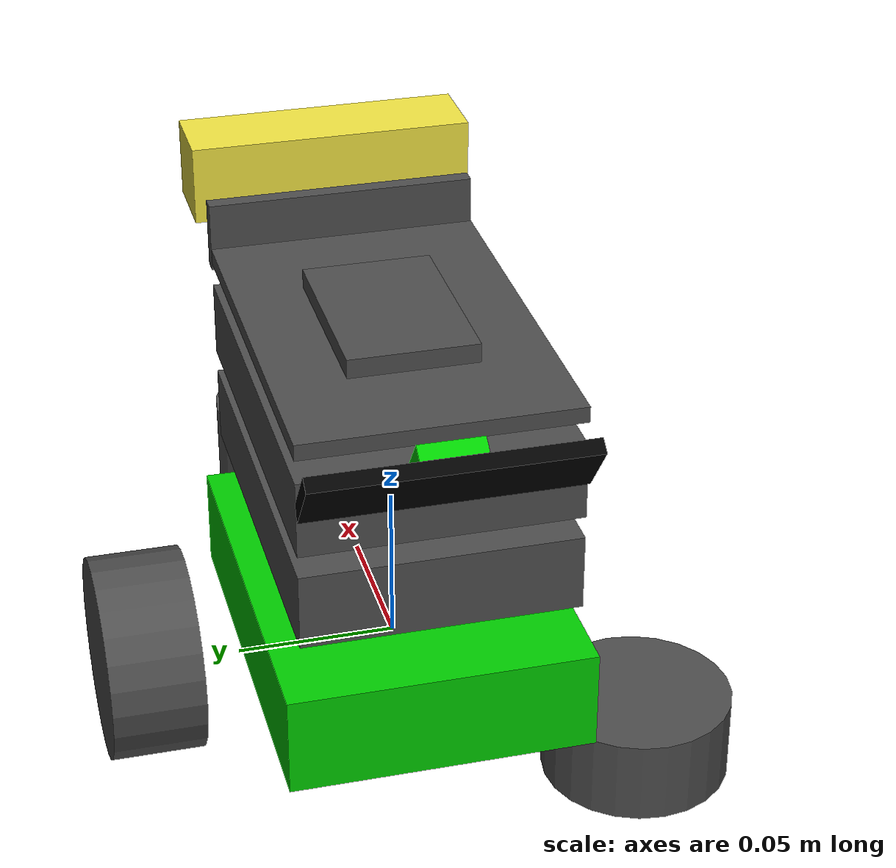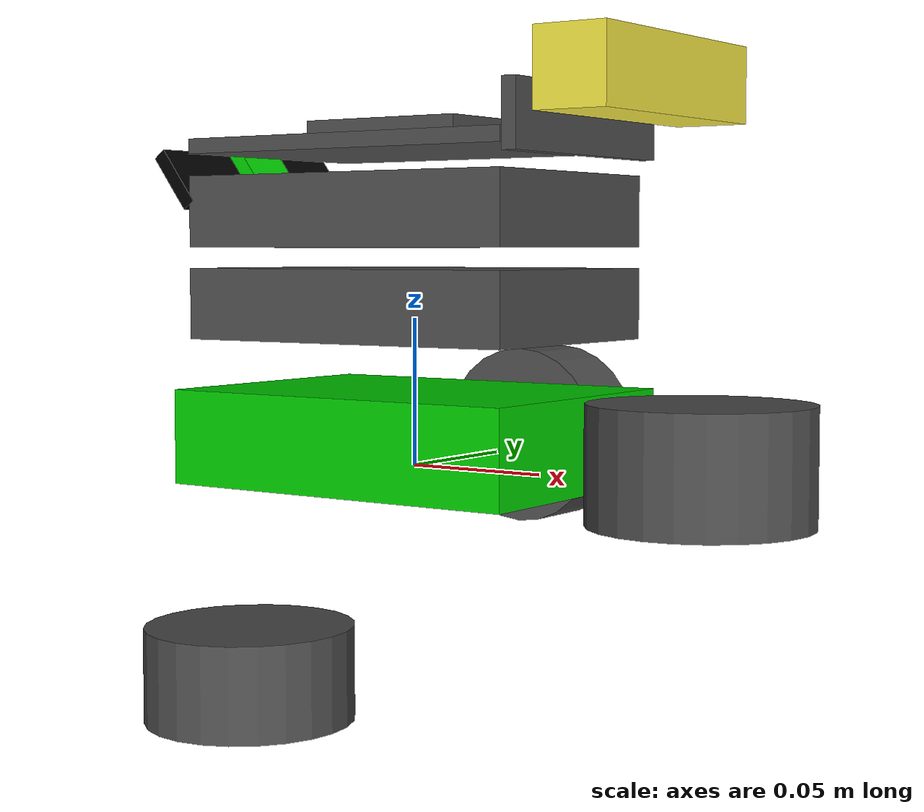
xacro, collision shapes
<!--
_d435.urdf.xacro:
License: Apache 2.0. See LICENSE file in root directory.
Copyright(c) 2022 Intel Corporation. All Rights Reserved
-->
<?xml version="1.0"?>
<robot xmlns:xacro="http://www.ros.org/wiki/xacro" name="jetbot_mirea">

    <xacro:arg name="use_nominal_extrinsics" default="false"/>
    <xacro:arg name="add_plug" default="false" />
    <xacro:arg name="use_mesh" default="true" />

    <xacro:include filename="common_properties.xacro"/>
    <xacro:include filename="$(find jetbot_mirea_description)/urdf/_d435.urdf.xacro" />

    <link name="base_footprint"/>

    <joint name="base_joint" type="fixed">
        <parent link="base_footprint"/>
        <child link="base_link"/>
        <origin xyz="0.0 0.0 0.01" rpy="0 0 0"/>
    </joint>

    <link name="base_link">
        <visual>
            <origin xyz="0.0 0.0 0.0" rpy="0 0 0"/>
            <geometry>
                <mesh filename="package://jetbot_mirea_description/meshes/jetbot_base.stl" scale="0.001 0.001 0.001"/>
                <box size="0.132 0.095 0.032"/>
            </geometry>
            <material name="acid_green"/>
        </visual>

        <collision>
            <origin xyz="0.0 0.0 0.0" rpy="0 0 0"/>
            <geometry>
                <box size="0.132 0.095 0.032"/>
            </geometry>
        </collision>

        <xacro:inertial_box mass="0.005" x="0.132" y="0.095" z="0.032">
            <origin xyz="0.0 0.0 0.0" rpy="0 0 0"/>
        </xacro:inertial_box>

    </link>

    <joint name="wheel_left_joint" type="continuous">
        <parent link="base_link"/>
        <child link="wheel_left_link"/>
        <origin xyz="0.0 0.08 -0.005" rpy="-1.57 0 0"/>
    </joint>

    <link name="wheel_left_link">
        <visual>
            <origin xyz="0 0 0" rpy="1.57 0 0"/>
            <geometry>
                <mesh filename="package://jetbot_mirea_description/meshes/jetbot_left_wheel.stl" scale="0.001 0.001 0.001"/>
            </geometry>
            <material name="dark"/>
        </visual>

        <collision>
            <origin xyz="0 0 0" rpy="0 0 0"/>
            <geometry>
                <cylinder length="0.029" radius="0.032"/>
            </geometry>
        </collision>

        <xacro:inertial_cylinder mass="0.001" length="0.029" radius="0.032">
            <origin xyz="0.0 -0.06 -0.005" rpy="0.0 0.0 0.0"/>
        </xacro:inertial_cylinder>

    </link>

    <joint name="wheel_right_joint" type="continuous">
        <parent link="base_link"/>
        <child link="wheel_right_link"/>
        <origin xyz="0 -0.08 -0.005" rpy="-1.57 0 0"/>
    </joint>

    <link name="wheel_right_link">
        <visual>
            <origin xyz="0 0.0 0.0" rpy="1.57 0 0"/>
            <geometry>
                <mesh filename="package://jetbot_mirea_description/meshes/jetbot_right_wheel.stl" scale="0.001 0.001 0.001"/>
            </geometry>
            <material name="dark"/>
        </visual>

        <collision>
            <origin xyz="0 0.06 -0.005" rpy="1.57 0 0"/>
            <geometry>
                <cylinder length="0.029" radius="0.032"/>
            </geometry>
        </collision>

        <xacro:inertial_cylinder mass="0.0010" length="0.029" radius="0.032">
            <origin xyz="0 0.06 -0.005" rpy="0 0 0"/>
        </xacro:inertial_cylinder>
    </link>

    <joint name="control_pcb_joint" type="fixed">
        <parent link="base_link"/>
        <child link="control_pcb_link"/>
        <origin xyz="0.0 0.0 0.045" rpy="0 0 0"/>
    </joint>

    <link name="control_pcb_link">
        <visual>
            <origin xyz="0.0 0.0 0.0" rpy="0 0 0"/>
            <geometry>
                <box size="0.126 0.085 0.024"/>
            </geometry>
            <material name="dark"/>
        </visual>

        <collision>
            <origin xyz="0.0 0.0 0.0" rpy="0 0 0"/>
            <geometry>
                <box size="0.126 0.085 0.024"/>
            </geometry>
        </collision>

        <xacro:inertial_box mass="0.300" x="0.018" y="0.085" z="0.024">
            <origin xyz="0.0 0.0 0.0" rpy="0 0 0"/>
        </xacro:inertial_box>
    </link>

    <joint name="jetson_nano_joint" type="fixed">
        <parent link="base_link"/>
        <child link="jetson_nano_link"/>
        <origin xyz="0.0 0.0 0.076" rpy="0 0 0"/>
    </joint>

    <link name="jetson_nano_link">
        <visual>
            <origin xyz="0.05 0.027 0.0" rpy="0 0 3.14"/>
            <geometry>
                <mesh filename="package://jetbot_mirea_description/meshes/jetson_nano.stl" scale="0.001 0.001 0.001"/>
            </geometry>
            <material name="dark"/>
        </visual>

        <collision>
            <origin xyz="0.0 0.0 0.0" rpy="0 0 0"/>
            <geometry>
                <box size="0.126 0.085 0.024"/>
            </geometry>
        </collision>

        <xacro:inertial_box mass="0.100" x="0.018" y="0.085" z="0.024">
            <origin xyz="0.0 0.0 0.0" rpy="0 0 0"/>
        </xacro:inertial_box>
    </link>

    <joint name="upperplate_joint" type="fixed">
        <parent link="base_link"/>
        <child link="upperplate_link"/>
        <origin xyz="0.0 0.0 0.098" rpy="0 0 0"/>
    </joint>

    <link name="upperplate_link">
        <visual>
            <origin xyz="0.0 0.0 0.0" rpy="0 0 0"/>
            <geometry>
                <box size="0.126 0.085 0.005"/>
            </geometry>
            <material name="dark"/>
        </visual>

        <collision>
            <origin xyz="0.0 0.0 0.0" rpy="0 0 0"/>
            <geometry>
                <box size="0.126 0.085 0.005"/>
            </geometry>
        </collision>

        <xacro:inertial_box mass="0.002" x="0.126" y="0.085" z="0.005">
            <origin xyz="0.0 0.0 0.0" rpy="0 0 0"/>
        </xacro:inertial_box>
    </link>

    <joint name="marvelmind_joint" type="fixed">
        <parent link="base_link"/>
        <child link="marvelmind_link"/>
        <origin xyz="0.0 0.0 0.103" rpy="0 0 0"/>
    </joint>

    <link name="marvelmind_link">
        <visual>
            <origin xyz="0.01 -0.01 0.0" rpy="0 0 1.57"/>
            <geometry>
                <mesh filename="package://jetbot_mirea_description/meshes/marvelmind_miniRX.stl" scale="0.001 0.001 0.001"/>
            </geometry>
            <material name="dark"/>
        </visual>

        <collision>
            <origin xyz="0.0 0.0 0.0" rpy="0 0 0"/>
            <geometry>
                <box size="0.06 0.04 0.007"/>
            </geometry>
        </collision>

        <xacro:inertial_box mass="0.0005" x="0.06" y="0.04" z="0.007">
            <origin xyz="0.0 0.0 0.0" rpy="0 0 0"/>
        </xacro:inertial_box>
    </link>

    <joint name="realsense_plate_joint" type="fixed">
        <parent link="upperplate_link"/>
        <child link="realsense_plate_link"/>
        <origin xyz="0.066 0.0 0.006" rpy="0 0 0"/>
    </joint>

    <link name="realsense_plate_link">
        <visual>
            <origin xyz="0.0 0.0 0.0" rpy="0 0 0"/>
            <geometry>
                <box size="0.005 0.085 0.022"/>
            </geometry>
            <material name="dark"/>
        </visual>

        <collision>
            <origin xyz="0.0 0.0 0.0" rpy="0 0 0"/>
            <geometry>
                <box size="0.005 0.085 0.022"/>
            </geometry>
        </collision>

        <xacro:inertial_box mass="0.0001" x="0.005" y="0.085" z="0.022">
            <origin xyz="0.0 0.0 0.0" rpy="0 0 0"/>
        </xacro:inertial_box>
    </link>

    <joint name = "realsense_joint" type="fixed">
        <parent link="realsense_plate_link"/>
        <child link="realsense_link"/>
        <origin xyz="0.006 0.0 0.0" rpy="0 0 0"/>
    </joint>

    <link name="realsense_link" />
        <xacro:sensor_d435 parent="realsense_plate_link" name="d435" use_nominal_extrinsics="$(arg use_nominal_extrinsics)" add_plug="$(arg add_plug)" use_mesh="$(arg use_mesh)">
        <origin xyz="0.012 0 0" rpy="0 0 0"/>
    </xacro:sensor_d435>

    <joint name="sci_camera_plate_joint" type="fixed">
        <parent link="base_link"/>
        <child link="sci_camera_plate_link"/>
        <origin xyz="-0.066 0.0 0.09" rpy="0 0.65 3.14"/>
    </joint>

    <link name="sci_camera_plate_link">
        <visual>
            <origin xyz="0.0 0.0 0.0" rpy="0 0 0"/>
            <geometry>
                <box size="0.005 0.02 0.022"/>
            </geometry>
            <material name="acid_green"/>
        </visual>

        <collision>
            <origin xyz="0.0 0.0 0.0" rpy="0 0 0"/>
            <geometry>
                <box size="0.005 0.02 0.022"/>
            </geometry>
        </collision>

        <xacro:inertial_box mass="0.0001" x="0.005" y="0.085" z="0.022">
            <origin xyz="0.0 0.0 0.0" rpy="0 0 0"/>
        </xacro:inertial_box>
    </link>

    <joint name="sci_camera_joint" type="fixed">
        <parent link="sci_camera_plate_link"/>
        <child link="sci_camera_link"/>
        <origin xyz="0.005 0.0 0.0" rpy="0 0.0 0.0"/>
    </joint>

    <link name="sci_camera_link">
        <visual>
            <origin xyz="0.0035 0.0 0.0" rpy="0 1.6 0"/>
            <geometry>
                <cylinder length="0.015" radius="0.01"/>
            </geometry>
            <material name="black"/>
        </visual>

        <collision>
            <origin xyz="0.0 0.0 0.0" rpy="0 0 0"/>
            <geometry>
                <box size="0.005 0.085 0.022"/>
            </geometry>
        </collision>

        <xacro:inertial_box mass="0.0001" x="0.005" y="0.085" z="0.022">
            <origin xyz="0.0 0.0 0.0" rpy="0 0 0"/>
        </xacro:inertial_box>
    </link>

  <joint name="rplidar_joint" type="fixed">
    <parent link="base_link"/>
    <child link="rplidar_link"/>
    <origin xyz="0.109 0.0 -0.003" rpy="3.14 0.0 0.0"/>
  </joint>

  <link name="rplidar_link">
    <visual>
        <origin xyz="0.0 0.0 0.0" rpy="3.14 0 0"/>
        <geometry>
            <cylinder length="0.038" radius="0.036"/>
        </geometry>
        <material name="dark"/>
    </visual>

        <collision>
            <origin xyz="0.0 0.0 0.0" rpy="3.14 0 0"/>
            <geometry>
                <cylinder length="0.038" radius="0.036"/>
            </geometry>
        </collision>

        <xacro:inertial_cylinder mass="0.01" length="0.038" radius="0.036">
            <origin xyz="0.0 0.0 0.0" rpy="0.0 0.0 0.0"/>
        </xacro:inertial_cylinder>
    </link>
</robot>

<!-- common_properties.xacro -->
<robot xmlns:xacro="http://www.ros.org/wiki/xacro" >

    <!-- This file is not a robot in and of itself, it just contains some useful tags that could be included in any robot -->
    <!-- Specify some colours -->

    <material name="white">
        <color rgba="1 1 1 1"/>
    </material>

    <material name="orange">
        <color rgba="1 0.3 0.1 1"/>
    </material>

    <material name="blue">
        <color rgba="0.2 0.2 1 1"/>
    </material>

    <material name="acid_green">
        <color rgba="0.0 0.8 0.0 1.0"/>
    </material>

    <material name="dark">
        <color rgba="0.3 0.3 0.3 1.0"/>
    </material>

    <material name="black">
        <color rgba="0.0 0.0 0.0 1" />
    </material>

    <!-- Specify some standard inertial calculations https://en.wikipedia.org/wiki/List_of_moments_of_inertia -->
    <!-- These make use of xacro's mathematical functionality -->

    <xacro:macro name="inertial_sphere" params="mass radius *origin">
        <inertial>
            <xacro:insert_block name="origin"/>
            <mass value="${mass}" />
            <inertia ixx="${(2/5) * mass * (radius*radius)}" ixy="0.0" ixz="0.0"
                    iyy="${(2/5) * mass * (radius*radius)}" iyz="0.0"
                    izz="${(2/5) * mass * (radius*radius)}" />
        </inertial>
    </xacro:macro>

    <xacro:macro name="inertial_box" params="mass x y z *origin">
        <inertial>
            <xacro:insert_block name="origin"/>
            <mass value="${mass}" />
            <inertia ixx="${(1/12) * mass * (y*y+z*z)}" ixy="0.0" ixz="0.0"
                    iyy="${(1/12) * mass * (x*x+z*z)}" iyz="0.0"
                    izz="${(1/12) * mass * (x*x+y*y)}" />
        </inertial>
    </xacro:macro>

    <xacro:macro name="inertial_cylinder" params="mass length radius *origin">
        <inertial>
            <xacro:insert_block name="origin"/>
            <mass value="${mass}" />
            <inertia ixx="${(1/12) * mass * (3*radius*radius + length*length)}" ixy="0.0" ixz="0.0"
                    iyy="${(1/12) * mass * (3*radius*radius + length*length)}" iyz="0.0"
                    izz="${(1/2) * mass * (radius*radius)}" />
        </inertial>
    </xacro:macro>

</robot>

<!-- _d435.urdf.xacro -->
<robot xmlns:xacro="http://ros.org/wiki/xacro">
  <!-- Includes -->
  <xacro:include filename="$(find jetbot_mirea_description)/urdf/_materials.urdf.xacro" />
  <xacro:include filename="$(find jetbot_mirea_description)/urdf/_usb_plug.urdf.xacro" />

  <xacro:macro name="sensor_d435" params="parent *origin name:=camera use_nominal_extrinsics:=true add_plug:=false use_mesh:=true">
    <xacro:property name="M_PI" value="3.1415926535897931" />

    <!-- The following values are approximate, and the camera node
     publishing TF values with actual calibrated camera extrinsic values -->
    <xacro:property name="d435_cam_depth_to_infra1_offset" value="0.0"/>
    <xacro:property name="d435_cam_depth_to_infra2_offset" value="-0.050"/>
    <xacro:property name="d435_cam_depth_to_color_offset" value="0.015"/>

    <!-- The following values model the aluminum peripherial case for the
  	D435 camera, with the camera joint represented by the actual
  	peripherial camera tripod mount -->
    <xacro:property name="d435_cam_width" value="0.090"/>
    <xacro:property name="d435_cam_height" value="0.025"/>
    <xacro:property name="d435_cam_depth" value="0.02505"/>
    <xacro:property name="d435_cam_mount_from_center_offset" value="0.0149"/>
    <!-- glass cover is 0.1 mm inwards from front aluminium plate -->
    <xacro:property name="d435_glass_to_front" value="0.1e-3"/>
    <!-- see datasheet Revision 007, Fig. 4-4 page 65 -->
    <xacro:property name="d435_zero_depth_to_glass" value="4.2e-3"/>
    <!-- convenience precomputation to avoid clutter-->
    <xacro:property name="d435_mesh_x_offset" value="${d435_cam_mount_from_center_offset-d435_glass_to_front-d435_zero_depth_to_glass}"/>

    <!-- The following offset is relative the the physical D435 camera peripherial
  	camera tripod mount -->
    <xacro:property name="d435_cam_depth_px" value="${d435_cam_mount_from_center_offset}"/>
    <xacro:property name="d435_cam_depth_py" value="0.0175"/>
    <xacro:property name="d435_cam_depth_pz" value="${d435_cam_height/2}"/>

    <!-- camera body, with origin at bottom screw mount -->
    <joint name="${name}_joint" type="fixed">
      <xacro:insert_block name="origin" />
      <parent link="${parent}"/>
      <child link="${name}_bottom_screw_frame" />
    </joint>
    <link name="${name}_bottom_screw_frame"/>

    <joint name="${name}_link_joint" type="fixed">
      <origin xyz="${d435_mesh_x_offset} ${d435_cam_depth_py} ${d435_cam_depth_pz}" rpy="0 0 0"/>
      <parent link="${name}_bottom_screw_frame"/>
      <child link="${name}_link" />
    </joint>

    <link name="${name}_link">
      <visual>
        <xacro:if value="${use_mesh}">
          <!-- the mesh origin is at front plate in between the two infrared camera axes -->
          <origin xyz="${d435_zero_depth_to_glass + d435_glass_to_front} ${-d435_cam_depth_py} 0" rpy="${M_PI/2} 0 ${M_PI/2}"/>
          <geometry>
            <mesh filename="package://jetbot_mirea_description/meshes/d435.dae" />
          </geometry>
        </xacro:if>
        <xacro:unless value="${use_mesh}">
          <origin xyz="0 ${-d435_cam_depth_py} 0" rpy="0 0 0"/>
          <geometry>
            <box size="${d435_cam_depth} ${d435_cam_width} ${d435_cam_height}"/>
          </geometry>
          <material name="aluminum"/>
        </xacro:unless>
      </visual>
      <collision>
        <origin xyz="0 ${-d435_cam_depth_py} 0" rpy="0 0 0"/>
        <geometry>
          <box size="${d435_cam_depth} ${d435_cam_width} ${d435_cam_height}"/>
        </geometry>
      </collision>
      <inertial>
        <!-- The following are not reliable values, and should not be used for modeling -->
        <mass value="0.072" />
        <origin xyz="0 0 0" />
        <inertia ixx="0.003881243" ixy="0.0" ixz="0.0" iyy="0.000498940" iyz="0.0" izz="0.003879257" />
      </inertial>
    </link>

    <!-- Use the nominal extrinsics between camera frames if the calibrated extrinsics aren't being published. e.g. running the device in simulation  -->
    <xacro:if value="${use_nominal_extrinsics}">
      <!-- camera depth joints and links -->
      <joint name="${name}_depth_joint" type="fixed">
        <origin xyz="0 0 0" rpy="0 0 0"/>
        <parent link="${name}_link"/>
        <child link="${name}_depth_frame" />
      </joint>
      <link name="${name}_depth_frame"/>

      <joint name="${name}_depth_optical_joint" type="fixed">
        <origin xyz="0 0 0" rpy="${-M_PI/2} 0 ${-M_PI/2}" />
        <parent link="${name}_depth_frame" />
        <child link="${name}_depth_optical_frame" />
      </joint>
      <link name="${name}_depth_optical_frame"/>

      <!-- camera left IR joints and links -->
      <joint name="${name}_infra1_joint" type="fixed">
        <origin xyz="0 ${d435_cam_depth_to_infra1_offset} 0" rpy="0 0 0" />
        <parent link="${name}_link" />
        <child link="${name}_infra1_frame" />
      </joint>
      <link name="${name}_infra1_frame"/>

      <joint name="${name}_infra1_optical_joint" type="fixed">
        <origin xyz="0 0 0" rpy="${-M_PI/2} 0 ${-M_PI/2}" />
        <parent link="${name}_infra1_frame" />
        <child link="${name}_infra1_optical_frame" />
      </joint>
      <link name="${name}_infra1_optical_frame"/>

      <!-- camera right IR joints and links -->
      <joint name="${name}_infra2_joint" type="fixed">
        <origin xyz="0 ${d435_cam_depth_to_infra2_offset} 0" rpy="0 0 0" />
        <parent link="${name}_link" />
        <child link="${name}_infra2_frame" />
      </joint>
      <link name="${name}_infra2_frame"/>

      <joint name="${name}_infra2_optical_joint" type="fixed">
        <origin xyz="0 0 0" rpy="${-M_PI/2} 0 ${-M_PI/2}" />
        <parent link="${name}_infra2_frame" />
        <child link="${name}_infra2_optical_frame" />
      </joint>
      <link name="${name}_infra2_optical_frame"/>

      <!-- camera color joints and links -->
      <joint name="${name}_color_joint" type="fixed">
        <origin xyz="0 ${d435_cam_depth_to_color_offset} 0" rpy="0 0 0" />
        <parent link="${name}_link" />
        <child link="${name}_color_frame" />
      </joint>
      <link name="${name}_color_frame"/>

      <joint name="${name}_color_optical_joint" type="fixed">
        <origin xyz="0 0 0" rpy="${-M_PI/2} 0 ${-M_PI/2}" />
        <parent link="${name}_color_frame" />
        <child link="${name}_color_optical_frame" />
      </joint>
      <link name="${name}_color_optical_frame"/>
    </xacro:if>

    <xacro:if value="${add_plug}">
      <xacro:usb_plug parent="${name}_link" name="${name}_usb_plug">
        <origin xyz="${d435_cam_mount_from_center_offset - 0.02095} ${-d435_cam_depth_py - 0.0353} 0" rpy="0 0 0"/>
      </xacro:usb_plug>
    </xacro:if>
  </xacro:macro>
</robot>
